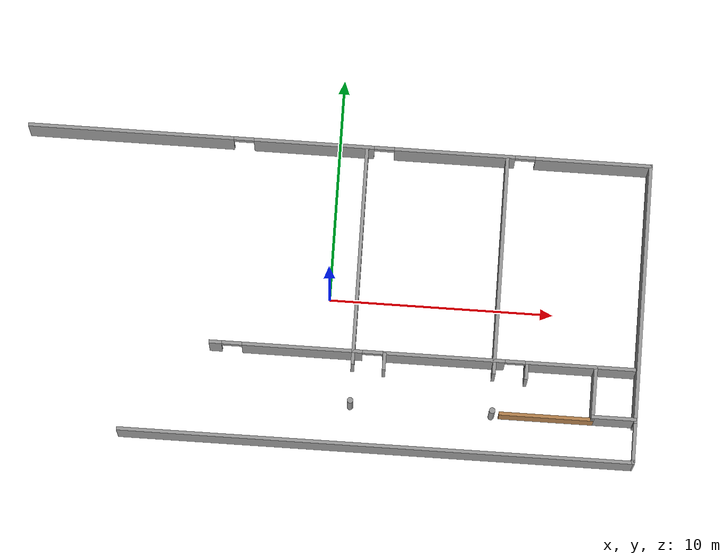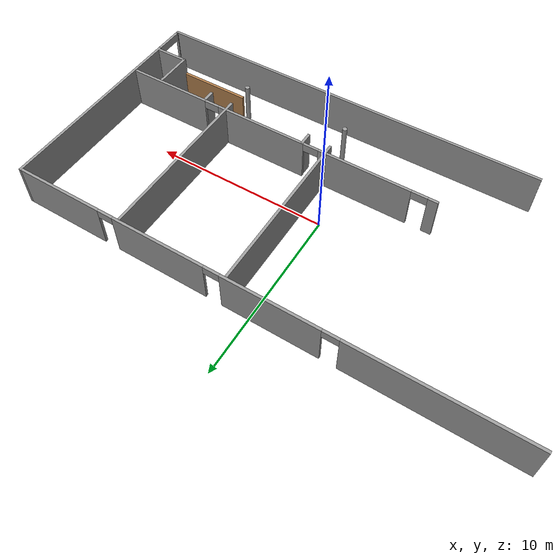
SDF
<sdf version="1.7">
 <model name="batimentH">
  <link name="Wall_0">
   <pose>0.006105 6.66605 0 0 -0 3.1407</pose>
   <visual name="Wall_0_Visual_0">
    <pose>-11.3504 0 1.25 0 -0 0</pose>
    <geometry><box><size>5.217 0.15 2.5</size></box></geometry>
    <material>
     <script><uri>file://media/materials/scripts/gazebo.material</uri><name>Gazebo/Grey</name></script>
     <ambient>1 1 1 1</ambient>
     <shader type="pixel"/>
    </material>
    <meta><layer>0</layer></meta>
   </visual>
   <visual name="Wall_0_Visual_1">
    <pose>-5.13636 0 1.25 0 -0 0</pose>
    <geometry><box><size>5.41105 0.15 2.5</size></box></geometry>
    <material>
     <script><uri>file://media/materials/scripts/gazebo.material</uri><name>Gazebo/Grey</name></script>
     <ambient>1 1 1 1</ambient>
     <shader type="pixel"/>
    </material>
    <meta><layer>0</layer></meta>
   </visual>
   <visual name="Wall_0_Visual_2">
    <pose>1.1607 0 1.25 0 -0 0</pose>
    <geometry><box><size>5.38305 0.15 2.5</size></box></geometry>
    <material>
     <script><uri>file://media/materials/scripts/gazebo.material</uri><name>Gazebo/Grey</name></script>
     <ambient>1 1 1 1</ambient>
     <shader type="pixel"/>
    </material>
    <meta><layer>0</layer></meta>
   </visual>
   <visual name="Wall_0_Visual_3">
    <pose>9.35555 0 1.25 0 -0 0</pose>
    <geometry><box><size>9.20665 0.15 2.5</size></box></geometry>
    <material>
     <script><uri>file://media/materials/scripts/gazebo.material</uri><name>Gazebo/Grey</name></script>
     <ambient>1 1 1 1</ambient>
     <shader type="pixel"/>
    </material>
    <meta><layer>0</layer></meta>
   </visual>
   <visual name="Wall_0_Visual_4">
    <pose>-8.29188 0 2.25 0 -0 0</pose>
    <geometry><box><size>0.9 0.15 0.5</size></box></geometry>
    <material>
     <script><uri>file://media/materials/scripts/gazebo.material</uri><name>Gazebo/Grey</name></script>
     <ambient>1 1 1 1</ambient>
     <shader type="pixel"/>
    </material>
    <meta><layer>0</layer></meta>
   </visual>
   <visual name="Wall_0_Visual_5">
    <pose>-1.98083 0 2.25 0 -0 0</pose>
    <geometry><box><size>0.9 0.15 0.5</size></box></geometry>
    <material>
     <script><uri>file://media/materials/scripts/gazebo.material</uri><name>Gazebo/Grey</name></script>
     <ambient>1 1 1 1</ambient>
     <shader type="pixel"/>
    </material>
    <meta><layer>0</layer></meta>
   </visual>
   <visual name="Wall_0_Visual_6">
    <pose>4.30223 0 2.25 0 -0 0</pose>
    <geometry><box><size>0.9 0.15 0.5</size></box></geometry>
    <material>
     <script><uri>file://media/materials/scripts/gazebo.material</uri><name>Gazebo/Grey</name></script>
     <ambient>1 1 1 1</ambient>
     <shader type="pixel"/>
    </material>
    <meta><layer>0</layer></meta>
   </visual>
   <collision name="Wall_0_Collision_0">
    <pose>-11.3504 0 1.25 0 -0 0</pose>
    <geometry><box><size>5.217 0.15 2.5</size></box></geometry>
    <surface>
     <friction>
      <ode><mu>1</mu><mu2>1</mu2><fdir1>0 0 0</fdir1><slip1>0</slip1><slip2>0</slip2></ode>
      <torsional>
       <coefficient>1</coefficient>
       <patch_radius>0</patch_radius>
       <surface_radius>0</surface_radius>
       <use_patch_radius>1</use_patch_radius>
       <ode><slip>0</slip></ode>
      </torsional>
     </friction>
     <bounce><restitution_coefficient>0</restitution_coefficient><threshold>1e+06</threshold></bounce>
     <contact>
      <collide_without_contact>0</collide_without_contact>
      <collide_without_contact_bitmask>1</collide_without_contact_bitmask>
      <collide_bitmask>1</collide_bitmask>
      <ode>
       <soft_cfm>0</soft_cfm>
       <soft_erp>0.2</soft_erp>
       <kp>1e+13</kp>
       <kd>1</kd>
       <max_vel>0.01</max_vel>
       <min_depth>0</min_depth>
      </ode>
      <bullet>
       <split_impulse>1</split_impulse>
       <split_impulse_penetration_threshold>-0.01</split_impulse_penetration_threshold>
       <soft_cfm>0</soft_cfm>
       <soft_erp>0.2</soft_erp>
       <kp>1e+13</kp>
       <kd>1</kd>
      </bullet>
     </contact>
    </surface>
   </collision>
   <collision name="Wall_0_Collision_1">
    <pose>-5.13636 0 1.25 0 -0 0</pose>
    <geometry><box><size>5.41105 0.15 2.5</size></box></geometry>
    <surface>
     <friction>
      <ode><mu>1</mu><mu2>1</mu2><fdir1>0 0 0</fdir1><slip1>0</slip1><slip2>0</slip2></ode>
      <torsional>
       <coefficient>1</coefficient>
       <patch_radius>0</patch_radius>
       <surface_radius>0</surface_radius>
       <use_patch_radius>1</use_patch_radius>
       <ode><slip>0</slip></ode>
      </torsional>
     </friction>
     <bounce><restitution_coefficient>0</restitution_coefficient><threshold>1e+06</threshold></bounce>
     <contact>
      <collide_without_contact>0</collide_without_contact>
      <collide_without_contact_bitmask>1</collide_without_contact_bitmask>
      <collide_bitmask>1</collide_bitmask>
      <ode>
       <soft_cfm>0</soft_cfm>
       <soft_erp>0.2</soft_erp>
       <kp>1e+13</kp>
       <kd>1</kd>
       <max_vel>0.01</max_vel>
       <min_depth>0</min_depth>
      </ode>
      <bullet>
       <split_impulse>1</split_impulse>
       <split_impulse_penetration_threshold>-0.01</split_impulse_penetration_threshold>
       <soft_cfm>0</soft_cfm>
       <soft_erp>0.2</soft_erp>
       <kp>1e+13</kp>
       <kd>1</kd>
      </bullet>
     </contact>
    </surface>
   </collision>
   <collision name="Wall_0_Collision_2">
    <pose>1.1607 0 1.25 0 -0 0</pose>
    <geometry><box><size>5.38305 0.15 2.5</size></box></geometry>
    <surface>
     <friction>
      <ode><mu>1</mu><mu2>1</mu2><fdir1>0 0 0</fdir1><slip1>0</slip1><slip2>0</slip2></ode>
      <torsional>
       <coefficient>1</coefficient>
       <patch_radius>0</patch_radius>
       <surface_radius>0</surface_radius>
       <use_patch_radius>1</use_patch_radius>
       <ode><slip>0</slip></ode>
      </torsional>
     </friction>
     <bounce><restitution_coefficient>0</restitution_coefficient><threshold>1e+06</threshold></bounce>
     <contact>
      <collide_without_contact>0</collide_without_contact>
      <collide_without_contact_bitmask>1</collide_without_contact_bitmask>
      <collide_bitmask>1</collide_bitmask>
      <ode>
       <soft_cfm>0</soft_cfm>
       <soft_erp>0.2</soft_erp>
       <kp>1e+13</kp>
       <kd>1</kd>
       <max_vel>0.01</max_vel>
       <min_depth>0</min_depth>
      </ode>
      <bullet>
       <split_impulse>1</split_impulse>
       <split_impulse_penetration_threshold>-0.01</split_impulse_penetration_threshold>
       <soft_cfm>0</soft_cfm>
       <soft_erp>0.2</soft_erp>
       <kp>1e+13</kp>
       <kd>1</kd>
      </bullet>
     </contact>
    </surface>
   </collision>
   <collision name="Wall_0_Collision_3">
    <pose>9.35555 0 1.25 0 -0 0</pose>
    <geometry><box><size>9.20665 0.15 2.5</size></box></geometry>
    <surface>
     <friction>
      <ode><mu>1</mu><mu2>1</mu2><fdir1>0 0 0</fdir1><slip1>0</slip1><slip2>0</slip2></ode>
      <torsional>
       <coefficient>1</coefficient>
       <patch_radius>0</patch_radius>
       <surface_radius>0</surface_radius>
       <use_patch_radius>1</use_patch_radius>
       <ode><slip>0</slip></ode>
      </torsional>
     </friction>
     <bounce><restitution_coefficient>0</restitution_coefficient><threshold>1e+06</threshold></bounce>
     <contact>
      <collide_without_contact>0</collide_without_contact>
      <collide_without_contact_bitmask>1</collide_without_contact_bitmask>
      <collide_bitmask>1</collide_bitmask>
      <ode>
       <soft_cfm>0</soft_cfm>
       <soft_erp>0.2</soft_erp>
       <kp>1e+13</kp>
       <kd>1</kd>
       <max_vel>0.01</max_vel>
       <min_depth>0</min_depth>
      </ode>
      <bullet>
       <split_impulse>1</split_impulse>
       <split_impulse_penetration_threshold>-0.01</split_impulse_penetration_threshold>
       <soft_cfm>0</soft_cfm>
       <soft_erp>0.2</soft_erp>
       <kp>1e+13</kp>
       <kd>1</kd>
      </bullet>
     </contact>
    </surface>
   </collision>
   <collision name="Wall_0_Collision_4">
    <pose>-8.29188 0 2.25 0 -0 0</pose>
    <geometry><box><size>0.9 0.15 0.5</size></box></geometry>
    <surface>
     <friction>
      <ode><mu>1</mu><mu2>1</mu2><fdir1>0 0 0</fdir1><slip1>0</slip1><slip2>0</slip2></ode>
      <torsional>
       <coefficient>1</coefficient>
       <patch_radius>0</patch_radius>
       <surface_radius>0</surface_radius>
       <use_patch_radius>1</use_patch_radius>
       <ode><slip>0</slip></ode>
      </torsional>
     </friction>
     <bounce><restitution_coefficient>0</restitution_coefficient><threshold>1e+06</threshold></bounce>
     <contact>
      <collide_without_contact>0</collide_without_contact>
      <collide_without_contact_bitmask>1</collide_without_contact_bitmask>
      <collide_bitmask>1</collide_bitmask>
      <ode>
       <soft_cfm>0</soft_cfm>
       <soft_erp>0.2</soft_erp>
       <kp>1e+13</kp>
       <kd>1</kd>
       <max_vel>0.01</max_vel>
       <min_depth>0</min_depth>
      </ode>
      <bullet>
       <split_impulse>1</split_impulse>
       <split_impulse_penetration_threshold>-0.01</split_impulse_penetration_threshold>
       <soft_cfm>0</soft_cfm>
       <soft_erp>0.2</soft_erp>
       <kp>1e+13</kp>
       <kd>1</kd>
      </bullet>
     </contact>
    </surface>
   </collision>
   <collision name="Wall_0_Collision_5">
    <pose>-1.98083 0 2.25 0 -0 0</pose>
    <geometry><box><size>0.9 0.15 0.5</size></box></geometry>
    <surface>
     <friction>
      <ode><mu>1</mu><mu2>1</mu2><fdir1>0 0 0</fdir1><slip1>0</slip1><slip2>0</slip2></ode>
      <torsional>
       <coefficient>1</coefficient>
       <patch_radius>0</patch_radius>
       <surface_radius>0</surface_radius>
       <use_patch_radius>1</use_patch_radius>
       <ode><slip>0</slip></ode>
      </torsional>
     </friction>
     <bounce><restitution_coefficient>0</restitution_coefficient><threshold>1e+06</threshold></bounce>
     <contact>
      <collide_without_contact>0</collide_without_contact>
      <collide_without_contact_bitmask>1</collide_without_contact_bitmask>
      <collide_bitmask>1</collide_bitmask>
      <ode>
       <soft_cfm>0</soft_cfm>
       <soft_erp>0.2</soft_erp>
       <kp>1e+13</kp>
       <kd>1</kd>
       <max_vel>0.01</max_vel>
       <min_depth>0</min_depth>
      </ode>
      <bullet>
       <split_impulse>1</split_impulse>
       <split_impulse_penetration_threshold>-0.01</split_impulse_penetration_threshold>
       <soft_cfm>0</soft_cfm>
       <soft_erp>0.2</soft_erp>
       <kp>1e+13</kp>
       <kd>1</kd>
      </bullet>
     </contact>
    </surface>
   </collision>
   <collision name="Wall_0_Collision_6">
    <pose>4.30223 0 2.25 0 -0 0</pose>
    <geometry><box><size>0.9 0.15 0.5</size></box></geometry>
    <surface>
     <friction>
      <ode><mu>1</mu><mu2>1</mu2><fdir1>0 0 0</fdir1><slip1>0</slip1><slip2>0</slip2></ode>
      <torsional>
       <coefficient>1</coefficient>
       <patch_radius>0</patch_radius>
       <surface_radius>0</surface_radius>
       <use_patch_radius>1</use_patch_radius>
       <ode><slip>0</slip></ode>
      </torsional>
     </friction>
     <bounce><restitution_coefficient>0</restitution_coefficient><threshold>1e+06</threshold></bounce>
     <contact>
      <collide_without_contact>0</collide_without_contact>
      <collide_without_contact_bitmask>1</collide_without_contact_bitmask>
      <collide_bitmask>1</collide_bitmask>
      <ode>
       <soft_cfm>0</soft_cfm>
       <soft_erp>0.2</soft_erp>
       <kp>1e+13</kp>
       <kd>1</kd>
       <max_vel>0.01</max_vel>
       <min_depth>0</min_depth>
      </ode>
      <bullet>
       <split_impulse>1</split_impulse>
       <split_impulse_penetration_threshold>-0.01</split_impulse_penetration_threshold>
       <soft_cfm>0</soft_cfm>
       <soft_erp>0.2</soft_erp>
       <kp>1e+13</kp>
       <kd>1</kd>
      </bullet>
     </contact>
    </surface>
   </collision>
  </link>
  <link name="Wall_35">
   <pose>1.21538 1.74857 0 0 0 -1.5708</pose>
   <visual name="Wall_35_Visual">
    <pose>0 0 1.25 0 -0 0</pose>
    <geometry><box><size>9.75 0.15 2.5</size></box></geometry>
    <material>
     <script><uri>file://media/materials/scripts/gazebo.material</uri><name>Gazebo/Grey</name></script>
     <ambient>1 1 1 1</ambient>
     <shader type="pixel"/>
    </material>
    <meta><layer>0</layer></meta>
   </visual>
   <collision name="Wall_35_Collision">
    <pose>0 0 1.25 0 -0 0</pose>
    <geometry><box><size>9.75 0.15 2.5</size></box></geometry>
    <surface>
     <friction>
      <ode><mu>1</mu><mu2>1</mu2><fdir1>0 0 0</fdir1><slip1>0</slip1><slip2>0</slip2></ode>
      <torsional>
       <coefficient>1</coefficient>
       <patch_radius>0</patch_radius>
       <surface_radius>0</surface_radius>
       <use_patch_radius>1</use_patch_radius>
       <ode><slip>0</slip></ode>
      </torsional>
     </friction>
     <bounce><restitution_coefficient>0</restitution_coefficient><threshold>1e+06</threshold></bounce>
     <contact>
      <collide_without_contact>0</collide_without_contact>
      <collide_without_contact_bitmask>1</collide_without_contact_bitmask>
      <collide_bitmask>1</collide_bitmask>
      <ode>
       <soft_cfm>0</soft_cfm>
       <soft_erp>0.2</soft_erp>
       <kp>1e+13</kp>
       <kd>1</kd>
       <max_vel>0.01</max_vel>
       <min_depth>0</min_depth>
      </ode>
      <bullet>
       <split_impulse>1</split_impulse>
       <split_impulse_penetration_threshold>-0.01</split_impulse_penetration_threshold>
       <soft_cfm>0</soft_cfm>
       <soft_erp>0.2</soft_erp>
       <kp>1e+13</kp>
       <kd>1</kd>
      </bullet>
     </contact>
    </surface>
   </collision>
  </link>
  <link name="Wall_37">
   <pose>7.50318 1.74251 0 0 0 -1.5708</pose>
   <visual name="Wall_37_Visual">
    <pose>0 0 1.25 0 -0 0</pose>
    <geometry><box><size>9.75 0.15 2.5</size></box></geometry>
    <material>
     <script><uri>file://media/materials/scripts/gazebo.material</uri><name>Gazebo/Grey</name></script>
     <ambient>1 1 1 1</ambient>
     <shader type="pixel"/>
    </material>
    <meta><layer>0</layer></meta>
   </visual>
   <collision name="Wall_37_Collision">
    <pose>0 0 1.25 0 -0 0</pose>
    <geometry><box><size>9.75 0.15 2.5</size></box></geometry>
    <surface>
     <friction>
      <ode><mu>1</mu><mu2>1</mu2><fdir1>0 0 0</fdir1><slip1>0</slip1><slip2>0</slip2></ode>
      <torsional>
       <coefficient>1</coefficient>
       <patch_radius>0</patch_radius>
       <surface_radius>0</surface_radius>
       <use_patch_radius>1</use_patch_radius>
       <ode><slip>0</slip></ode>
      </torsional>
     </friction>
     <bounce><restitution_coefficient>0</restitution_coefficient><threshold>1e+06</threshold></bounce>
     <contact>
      <collide_without_contact>0</collide_without_contact>
      <collide_without_contact_bitmask>1</collide_without_contact_bitmask>
      <collide_bitmask>1</collide_bitmask>
      <ode>
       <soft_cfm>0</soft_cfm>
       <soft_erp>0.2</soft_erp>
       <kp>1e+13</kp>
       <kd>1</kd>
       <max_vel>0.01</max_vel>
       <min_depth>0</min_depth>
      </ode>
      <bullet>
       <split_impulse>1</split_impulse>
       <split_impulse_penetration_threshold>-0.01</split_impulse_penetration_threshold>
       <soft_cfm>0</soft_cfm>
       <soft_erp>0.2</soft_erp>
       <kp>1e+13</kp>
       <kd>1</kd>
      </bullet>
     </contact>
    </surface>
   </collision>
  </link>
  <link name="Wall_39">
   <pose>4.29019 -2.53685 0 0 -0 0</pose>
   <visual name="Wall_39_Visual_0">
    <pose>-9.21688 0 1.25 0 -0 0</pose>
    <geometry><box><size>0.566242 0.15 2.5</size></box></geometry>
    <material>
     <script><uri>file://media/materials/scripts/gazebo.material</uri><name>Gazebo/Grey</name></script>
     <ambient>1 1 1 1</ambient>
     <shader type="pixel"/>
    </material>
    <meta><layer>0</layer></meta>
   </visual>
   <visual name="Wall_39_Visual_1">
    <pose>-5.3521 0 1.25 0 -0 0</pose>
    <geometry><box><size>5.36332 0.15 2.5</size></box></geometry>
    <material>
     <script><uri>file://media/materials/scripts/gazebo.material</uri><name>Gazebo/Grey</name></script>
     <ambient>1 1 1 1</ambient>
     <shader type="pixel"/>
    </material>
    <meta><layer>0</layer></meta>
   </visual>
   <visual name="Wall_39_Visual_2">
    <pose>0.951247 0 1.25 0 -0 0</pose>
    <geometry><box><size>5.44336 0.15 2.5</size></box></geometry>
    <material>
     <script><uri>file://media/materials/scripts/gazebo.material</uri><name>Gazebo/Grey</name></script>
     <ambient>1 1 1 1</ambient>
     <shader type="pixel"/>
    </material>
    <meta><layer>0</layer></meta>
   </visual>
   <visual name="Wall_39_Visual_3">
    <pose>7.03646 0 1.25 0 -0 0</pose>
    <geometry><box><size>4.92707 0.15 2.5</size></box></geometry>
    <material>
     <script><uri>file://media/materials/scripts/gazebo.material</uri><name>Gazebo/Grey</name></script>
     <ambient>1 1 1 1</ambient>
     <shader type="pixel"/>
    </material>
    <meta><layer>0</layer></meta>
   </visual>
   <visual name="Wall_39_Visual_4">
    <pose>-8.48376 0 2.25 0 -0 0</pose>
    <geometry><box><size>0.9 0.15 0.5</size></box></geometry>
    <material>
     <script><uri>file://media/materials/scripts/gazebo.material</uri><name>Gazebo/Grey</name></script>
     <ambient>1 1 1 1</ambient>
     <shader type="pixel"/>
    </material>
    <meta><layer>0</layer></meta>
   </visual>
   <visual name="Wall_39_Visual_5">
    <pose>-2.22043 0 2.25 0 -0 0</pose>
    <geometry><box><size>0.9 0.15 0.5</size></box></geometry>
    <material>
     <script><uri>file://media/materials/scripts/gazebo.material</uri><name>Gazebo/Grey</name></script>
     <ambient>1 1 1 1</ambient>
     <shader type="pixel"/>
    </material>
    <meta><layer>0</layer></meta>
   </visual>
   <visual name="Wall_39_Visual_6">
    <pose>4.12293 0 2.25 0 -0 0</pose>
    <geometry><box><size>0.9 0.15 0.5</size></box></geometry>
    <material>
     <script><uri>file://media/materials/scripts/gazebo.material</uri><name>Gazebo/Grey</name></script>
     <ambient>1 1 1 1</ambient>
     <shader type="pixel"/>
    </material>
    <meta><layer>0</layer></meta>
   </visual>
   <collision name="Wall_39_Collision_0">
    <pose>-9.21688 0 1.25 0 -0 0</pose>
    <geometry><box><size>0.566242 0.15 2.5</size></box></geometry>
    <surface>
     <friction>
      <ode><mu>1</mu><mu2>1</mu2><fdir1>0 0 0</fdir1><slip1>0</slip1><slip2>0</slip2></ode>
      <torsional>
       <coefficient>1</coefficient>
       <patch_radius>0</patch_radius>
       <surface_radius>0</surface_radius>
       <use_patch_radius>1</use_patch_radius>
       <ode><slip>0</slip></ode>
      </torsional>
     </friction>
     <bounce><restitution_coefficient>0</restitution_coefficient><threshold>1e+06</threshold></bounce>
     <contact>
      <collide_without_contact>0</collide_without_contact>
      <collide_without_contact_bitmask>1</collide_without_contact_bitmask>
      <collide_bitmask>1</collide_bitmask>
      <ode>
       <soft_cfm>0</soft_cfm>
       <soft_erp>0.2</soft_erp>
       <kp>1e+13</kp>
       <kd>1</kd>
       <max_vel>0.01</max_vel>
       <min_depth>0</min_depth>
      </ode>
      <bullet>
       <split_impulse>1</split_impulse>
       <split_impulse_penetration_threshold>-0.01</split_impulse_penetration_threshold>
       <soft_cfm>0</soft_cfm>
       <soft_erp>0.2</soft_erp>
       <kp>1e+13</kp>
       <kd>1</kd>
      </bullet>
     </contact>
    </surface>
   </collision>
   <collision name="Wall_39_Collision_2">
    <pose>0.951247 0 1.25 0 -0 0</pose>
    <geometry><box><size>5.44336 0.15 2.5</size></box></geometry>
    <surface>
     <friction>
      <ode><mu>1</mu><mu2>1</mu2><fdir1>0 0 0</fdir1><slip1>0</slip1><slip2>0</slip2></ode>
      <torsional>
       <coefficient>1</coefficient>
       <patch_radius>0</patch_radius>
       <surface_radius>0</surface_radius>
       <use_patch_radius>1</use_patch_radius>
       <ode><slip>0</slip></ode>
      </torsional>
     </friction>
     <bounce><restitution_coefficient>0</restitution_coefficient><threshold>1e+06</threshold></bounce>
     <contact>
      <collide_without_contact>0</collide_without_contact>
      <collide_without_contact_bitmask>1</collide_without_contact_bitmask>
      <collide_bitmask>1</collide_bitmask>
      <ode>
       <soft_cfm>0</soft_cfm>
       <soft_erp>0.2</soft_erp>
       <kp>1e+13</kp>
       <kd>1</kd>
       <max_vel>0.01</max_vel>
       <min_depth>0</min_depth>
      </ode>
      <bullet>
       <split_impulse>1</split_impulse>
       <split_impulse_penetration_threshold>-0.01</split_impulse_penetration_threshold>
       <soft_cfm>0</soft_cfm>
       <soft_erp>0.2</soft_erp>
       <kp>1e+13</kp>
       <kd>1</kd>
      </bullet>
     </contact>
    </surface>
   </collision>
   <collision name="Wall_39_Collision_1">
    <pose>-5.3521 0 1.25 0 -0 0</pose>
    <geometry><box><size>5.36332 0.15 2.5</size></box></geometry>
    <surface>
     <friction>
      <ode><mu>1</mu><mu2>1</mu2><fdir1>0 0 0</fdir1><slip1>0</slip1><slip2>0</slip2></ode>
      <torsional>
       <coefficient>1</coefficient>
       <patch_radius>0</patch_radius>
       <surface_radius>0</surface_radius>
       <use_patch_radius>1</use_patch_radius>
       <ode><slip>0</slip></ode>
      </torsional>
     </friction>
     <bounce><restitution_coefficient>0</restitution_coefficient><threshold>1e+06</threshold></bounce>
     <contact>
      <collide_without_contact>0</collide_without_contact>
      <collide_without_contact_bitmask>1</collide_without_contact_bitmask>
      <collide_bitmask>1</collide_bitmask>
      <ode>
       <soft_cfm>0</soft_cfm>
       <soft_erp>0.2</soft_erp>
       <kp>1e+13</kp>
       <kd>1</kd>
       <max_vel>0.01</max_vel>
       <min_depth>0</min_depth>
      </ode>
      <bullet>
       <split_impulse>1</split_impulse>
       <split_impulse_penetration_threshold>-0.01</split_impulse_penetration_threshold>
       <soft_cfm>0</soft_cfm>
       <soft_erp>0.2</soft_erp>
       <kp>1e+13</kp>
       <kd>1</kd>
      </bullet>
     </contact>
    </surface>
   </collision>
   <collision name="Wall_39_Collision_3">
    <pose>7.03646 0 1.25 0 -0 0</pose>
    <geometry><box><size>4.92707 0.15 2.5</size></box></geometry>
    <surface>
     <friction>
      <ode><mu>1</mu><mu2>1</mu2><fdir1>0 0 0</fdir1><slip1>0</slip1><slip2>0</slip2></ode>
      <torsional>
       <coefficient>1</coefficient>
       <patch_radius>0</patch_radius>
       <surface_radius>0</surface_radius>
       <use_patch_radius>1</use_patch_radius>
       <ode><slip>0</slip></ode>
      </torsional>
     </friction>
     <bounce><restitution_coefficient>0</restitution_coefficient><threshold>1e+06</threshold></bounce>
     <contact>
      <collide_without_contact>0</collide_without_contact>
      <collide_without_contact_bitmask>1</collide_without_contact_bitmask>
      <collide_bitmask>1</collide_bitmask>
      <ode>
       <soft_cfm>0</soft_cfm>
       <soft_erp>0.2</soft_erp>
       <kp>1e+13</kp>
       <kd>1</kd>
       <max_vel>0.01</max_vel>
       <min_depth>0</min_depth>
      </ode>
      <bullet>
       <split_impulse>1</split_impulse>
       <split_impulse_penetration_threshold>-0.01</split_impulse_penetration_threshold>
       <soft_cfm>0</soft_cfm>
       <soft_erp>0.2</soft_erp>
       <kp>1e+13</kp>
       <kd>1</kd>
      </bullet>
     </contact>
    </surface>
   </collision>
   <collision name="Wall_39_Collision_4">
    <pose>-8.48376 0 2.25 0 -0 0</pose>
    <geometry><box><size>0.9 0.15 0.5</size></box></geometry>
    <surface>
     <friction>
      <ode><mu>1</mu><mu2>1</mu2><fdir1>0 0 0</fdir1><slip1>0</slip1><slip2>0</slip2></ode>
      <torsional>
       <coefficient>1</coefficient>
       <patch_radius>0</patch_radius>
       <surface_radius>0</surface_radius>
       <use_patch_radius>1</use_patch_radius>
       <ode><slip>0</slip></ode>
      </torsional>
     </friction>
     <bounce><restitution_coefficient>0</restitution_coefficient><threshold>1e+06</threshold></bounce>
     <contact>
      <collide_without_contact>0</collide_without_contact>
      <collide_without_contact_bitmask>1</collide_without_contact_bitmask>
      <collide_bitmask>1</collide_bitmask>
      <ode>
       <soft_cfm>0</soft_cfm>
       <soft_erp>0.2</soft_erp>
       <kp>1e+13</kp>
       <kd>1</kd>
       <max_vel>0.01</max_vel>
       <min_depth>0</min_depth>
      </ode>
      <bullet>
       <split_impulse>1</split_impulse>
       <split_impulse_penetration_threshold>-0.01</split_impulse_penetration_threshold>
       <soft_cfm>0</soft_cfm>
       <soft_erp>0.2</soft_erp>
       <kp>1e+13</kp>
       <kd>1</kd>
      </bullet>
     </contact>
    </surface>
   </collision>
   <collision name="Wall_39_Collision_5">
    <pose>-2.22043 0 2.25 0 -0 0</pose>
    <geometry><box><size>0.9 0.15 0.5</size></box></geometry>
    <surface>
     <friction>
      <ode><mu>1</mu><mu2>1</mu2><fdir1>0 0 0</fdir1><slip1>0</slip1><slip2>0</slip2></ode>
      <torsional>
       <coefficient>1</coefficient>
       <patch_radius>0</patch_radius>
       <surface_radius>0</surface_radius>
       <use_patch_radius>1</use_patch_radius>
       <ode><slip>0</slip></ode>
      </torsional>
     </friction>
     <bounce><restitution_coefficient>0</restitution_coefficient><threshold>1e+06</threshold></bounce>
     <contact>
      <collide_without_contact>0</collide_without_contact>
      <collide_without_contact_bitmask>1</collide_without_contact_bitmask>
      <collide_bitmask>1</collide_bitmask>
      <ode>
       <soft_cfm>0</soft_cfm>
       <soft_erp>0.2</soft_erp>
       <kp>1e+13</kp>
       <kd>1</kd>
       <max_vel>0.01</max_vel>
       <min_depth>0</min_depth>
      </ode>
      <bullet>
       <split_impulse>1</split_impulse>
       <split_impulse_penetration_threshold>-0.01</split_impulse_penetration_threshold>
       <soft_cfm>0</soft_cfm>
       <soft_erp>0.2</soft_erp>
       <kp>1e+13</kp>
       <kd>1</kd>
      </bullet>
     </contact>
    </surface>
   </collision>
   <collision name="Wall_39_Collision_6">
    <pose>4.12293 0 2.25 0 -0 0</pose>
    <geometry><box><size>0.9 0.15 0.5</size></box></geometry>
    <surface>
     <friction>
      <ode><mu>1</mu><mu2>1</mu2><fdir1>0 0 0</fdir1><slip1>0</slip1><slip2>0</slip2></ode>
      <torsional>
       <coefficient>1</coefficient>
       <patch_radius>0</patch_radius>
       <surface_radius>0</surface_radius>
       <use_patch_radius>1</use_patch_radius>
       <ode><slip>0</slip></ode>
      </torsional>
     </friction>
     <bounce><restitution_coefficient>0</restitution_coefficient><threshold>1e+06</threshold></bounce>
     <contact>
      <collide_without_contact>0</collide_without_contact>
      <collide_without_contact_bitmask>1</collide_without_contact_bitmask>
      <collide_bitmask>1</collide_bitmask>
      <ode>
       <soft_cfm>0</soft_cfm>
       <soft_erp>0.2</soft_erp>
       <kp>1e+13</kp>
       <kd>1</kd>
       <max_vel>0.01</max_vel>
       <min_depth>0</min_depth>
      </ode>
      <bullet>
       <split_impulse>1</split_impulse>
       <split_impulse_penetration_threshold>-0.01</split_impulse_penetration_threshold>
       <soft_cfm>0</soft_cfm>
       <soft_erp>0.2</soft_erp>
       <kp>1e+13</kp>
       <kd>1</kd>
      </bullet>
     </contact>
    </surface>
   </collision>
  </link>
  <link name="Wall_42">
   <pose>2.61433 -2.89979 0 0 0 -1.5708</pose>
   <visual name="Wall_42_Visual">
    <pose>0 0 1.25 0 -0 0</pose>
    <geometry><box><size>0.75 0.15 2.5</size></box></geometry>
    <material>
     <script><uri>file://media/materials/scripts/gazebo.material</uri><name>Gazebo/Grey</name></script>
     <ambient>1 1 1 1</ambient>
     <shader type="pixel"/>
    </material>
    <meta><layer>0</layer></meta>
   </visual>
   <collision name="Wall_42_Collision">
    <pose>0 0 1.25 0 -0 0</pose>
    <geometry><box><size>0.75 0.15 2.5</size></box></geometry>
    <surface>
     <friction>
      <ode><mu>1</mu><mu2>1</mu2><fdir1>0 0 0</fdir1><slip1>0</slip1><slip2>0</slip2></ode>
      <torsional>
       <coefficient>1</coefficient>
       <patch_radius>0</patch_radius>
       <surface_radius>0</surface_radius>
       <use_patch_radius>1</use_patch_radius>
       <ode><slip>0</slip></ode>
      </torsional>
     </friction>
     <bounce><restitution_coefficient>0</restitution_coefficient><threshold>1e+06</threshold></bounce>
     <contact>
      <collide_without_contact>0</collide_without_contact>
      <collide_without_contact_bitmask>1</collide_without_contact_bitmask>
      <collide_bitmask>1</collide_bitmask>
      <ode>
       <soft_cfm>0</soft_cfm>
       <soft_erp>0.2</soft_erp>
       <kp>1e+13</kp>
       <kd>1</kd>
       <max_vel>0.01</max_vel>
       <min_depth>0</min_depth>
      </ode>
      <bullet>
       <split_impulse>1</split_impulse>
       <split_impulse_penetration_threshold>-0.01</split_impulse_penetration_threshold>
       <soft_cfm>0</soft_cfm>
       <soft_erp>0.2</soft_erp>
       <kp>1e+13</kp>
       <kd>1</kd>
      </bullet>
     </contact>
    </surface>
   </collision>
  </link>
  <link name="Wall_46">
   <pose>8.94655 -2.90008 0 0 0 -1.5708</pose>
   <visual name="Wall_46_Visual">
    <pose>0 0 1.25 0 -0 0</pose>
    <geometry><box><size>0.75 0.15 2.5</size></box></geometry>
    <material>
     <script><uri>file://media/materials/scripts/gazebo.material</uri><name>Gazebo/Grey</name></script>
     <ambient>1 1 1 1</ambient>
     <shader type="pixel"/>
    </material>
    <meta><layer>0</layer></meta>
   </visual>
   <collision name="Wall_46_Collision">
    <pose>0 0 1.25 0 -0 0</pose>
    <geometry><box><size>0.75 0.15 2.5</size></box></geometry>
    <surface>
     <friction>
      <ode><mu>1</mu><mu2>1</mu2><fdir1>0 0 0</fdir1><slip1>0</slip1><slip2>0</slip2></ode>
      <torsional>
       <coefficient>1</coefficient>
       <patch_radius>0</patch_radius>
       <surface_radius>0</surface_radius>
       <use_patch_radius>1</use_patch_radius>
       <ode><slip>0</slip></ode>
      </torsional>
     </friction>
     <bounce><restitution_coefficient>0</restitution_coefficient><threshold>1e+06</threshold></bounce>
     <contact>
      <collide_without_contact>0</collide_without_contact>
      <collide_without_contact_bitmask>1</collide_without_contact_bitmask>
      <collide_bitmask>1</collide_bitmask>
      <ode>
       <soft_cfm>0</soft_cfm>
       <soft_erp>0.2</soft_erp>
       <kp>1e+13</kp>
       <kd>1</kd>
       <max_vel>0.01</max_vel>
       <min_depth>0</min_depth>
      </ode>
      <bullet>
       <split_impulse>1</split_impulse>
       <split_impulse_penetration_threshold>-0.01</split_impulse_penetration_threshold>
       <soft_cfm>0</soft_cfm>
       <soft_erp>0.2</soft_erp>
       <kp>1e+13</kp>
       <kd>1</kd>
      </bullet>
     </contact>
    </surface>
   </collision>
  </link>
  <link name="Wall_52">
   <pose>2.47315 -6.68173 0 0 -0 0.000539</pose>
   <visual name="Wall_52_Visual">
    <pose>0 0 1.25 0 -0 0</pose>
    <geometry><box><size>22.9929 0.15 2.5</size></box></geometry>
    <material>
     <script><uri>file://media/materials/scripts/gazebo.material</uri><name>Gazebo/Grey</name></script>
     <ambient>1 1 1 1</ambient>
     <shader type="pixel"/>
    </material>
    <meta><layer>0</layer></meta>
   </visual>
   <collision name="Wall_52_Collision">
    <pose>0 0 1.25 0 -0 0</pose>
    <geometry><box><size>22.9929 0.15 2.5</size></box></geometry>
    <surface>
     <friction>
      <ode><mu>1</mu><mu2>1</mu2><fdir1>0 0 0</fdir1><slip1>0</slip1><slip2>0</slip2></ode>
      <torsional>
       <coefficient>1</coefficient>
       <patch_radius>0</patch_radius>
       <surface_radius>0</surface_radius>
       <use_patch_radius>1</use_patch_radius>
       <ode><slip>0</slip></ode>
      </torsional>
     </friction>
     <bounce><restitution_coefficient>0</restitution_coefficient><threshold>1e+06</threshold></bounce>
     <contact>
      <collide_without_contact>0</collide_without_contact>
      <collide_without_contact_bitmask>1</collide_without_contact_bitmask>
      <collide_bitmask>1</collide_bitmask>
      <ode>
       <soft_cfm>0</soft_cfm>
       <soft_erp>0.2</soft_erp>
       <kp>1e+13</kp>
       <kd>1</kd>
       <max_vel>0.01</max_vel>
       <min_depth>0</min_depth>
      </ode>
      <bullet>
       <split_impulse>1</split_impulse>
       <split_impulse_penetration_threshold>-0.01</split_impulse_penetration_threshold>
       <soft_cfm>0</soft_cfm>
       <soft_erp>0.2</soft_erp>
       <kp>1e+13</kp>
       <kd>1</kd>
      </bullet>
     </contact>
    </surface>
   </collision>
  </link>
  <link name="Wall_53">
   <pose>13.8985 -0.010927 0 0 -0 1.57021</pose>
   <visual name="Wall_53_Visual_0">
    <pose>-6.63903 0 1.25 0 -0 0</pose>
    <geometry><box><size>0.201223 0.15 2.5</size></box></geometry>
    <material>
     <script><uri>file://media/materials/scripts/gazebo.material</uri><name>Gazebo/Grey</name></script>
     <ambient>1 1 1 1</ambient>
     <shader type="pixel"/>
    </material>
    <meta><layer>0</layer></meta>
   </visual>
   <visual name="Wall_53_Visual_1">
    <pose>0.916637 0 1.25 0 -0 0</pose>
    <geometry><box><size>11.646 0.15 2.5</size></box></geometry>
    <material>
     <script><uri>file://media/materials/scripts/gazebo.material</uri><name>Gazebo/Grey</name></script>
     <ambient>1 1 1 1</ambient>
     <shader type="pixel"/>
    </material>
    <meta><layer>0</layer></meta>
   </visual>
   <visual name="Wall_53_Visual_2">
    <pose>-5.72239 0 2.25 0 -0 0</pose>
    <geometry><box><size>1.63205 0.15 0.5</size></box></geometry>
    <material>
     <script><uri>file://media/materials/scripts/gazebo.material</uri><name>Gazebo/Grey</name></script>
     <ambient>1 1 1 1</ambient>
     <shader type="pixel"/>
    </material>
    <meta><layer>0</layer></meta>
   </visual>
   <collision name="Wall_53_Collision_0">
    <pose>-6.63903 0 1.25 0 -0 0</pose>
    <geometry><box><size>0.201223 0.15 2.5</size></box></geometry>
    <surface>
     <friction>
      <ode><mu>1</mu><mu2>1</mu2><fdir1>0 0 0</fdir1><slip1>0</slip1><slip2>0</slip2></ode>
      <torsional>
       <coefficient>1</coefficient>
       <patch_radius>0</patch_radius>
       <surface_radius>0</surface_radius>
       <use_patch_radius>1</use_patch_radius>
       <ode><slip>0</slip></ode>
      </torsional>
     </friction>
     <bounce><restitution_coefficient>0</restitution_coefficient><threshold>1e+06</threshold></bounce>
     <contact>
      <collide_without_contact>0</collide_without_contact>
      <collide_without_contact_bitmask>1</collide_without_contact_bitmask>
      <collide_bitmask>1</collide_bitmask>
      <ode>
       <soft_cfm>0</soft_cfm>
       <soft_erp>0.2</soft_erp>
       <kp>1e+13</kp>
       <kd>1</kd>
       <max_vel>0.01</max_vel>
       <min_depth>0</min_depth>
      </ode>
      <bullet>
       <split_impulse>1</split_impulse>
       <split_impulse_penetration_threshold>-0.01</split_impulse_penetration_threshold>
       <soft_cfm>0</soft_cfm>
       <soft_erp>0.2</soft_erp>
       <kp>1e+13</kp>
       <kd>1</kd>
      </bullet>
     </contact>
    </surface>
   </collision>
   <collision name="Wall_53_Collision_1">
    <pose>0.916637 0 1.25 0 -0 0</pose>
    <geometry><box><size>11.646 0.15 2.5</size></box></geometry>
    <surface>
     <friction>
      <ode><mu>1</mu><mu2>1</mu2><fdir1>0 0 0</fdir1><slip1>0</slip1><slip2>0</slip2></ode>
      <torsional>
       <coefficient>1</coefficient>
       <patch_radius>0</patch_radius>
       <surface_radius>0</surface_radius>
       <use_patch_radius>1</use_patch_radius>
       <ode><slip>0</slip></ode>
      </torsional>
     </friction>
     <bounce><restitution_coefficient>0</restitution_coefficient><threshold>1e+06</threshold></bounce>
     <contact>
      <collide_without_contact>0</collide_without_contact>
      <collide_without_contact_bitmask>1</collide_without_contact_bitmask>
      <collide_bitmask>1</collide_bitmask>
      <ode>
       <soft_cfm>0</soft_cfm>
       <soft_erp>0.2</soft_erp>
       <kp>1e+13</kp>
       <kd>1</kd>
       <max_vel>0.01</max_vel>
       <min_depth>0</min_depth>
      </ode>
      <bullet>
       <split_impulse>1</split_impulse>
       <split_impulse_penetration_threshold>-0.01</split_impulse_penetration_threshold>
       <soft_cfm>0</soft_cfm>
       <soft_erp>0.2</soft_erp>
       <kp>1e+13</kp>
       <kd>1</kd>
      </bullet>
     </contact>
    </surface>
   </collision>
   <collision name="Wall_53_Collision_2">
    <pose>-5.72239 0 2.25 0 -0 0</pose>
    <geometry><box><size>1.63205 0.15 0.5</size></box></geometry>
    <surface>
     <friction>
      <ode><mu>1</mu><mu2>1</mu2><fdir1>0 0 0</fdir1><slip1>0</slip1><slip2>0</slip2></ode>
      <torsional>
       <coefficient>1</coefficient>
       <patch_radius>0</patch_radius>
       <surface_radius>0</surface_radius>
       <use_patch_radius>1</use_patch_radius>
       <ode><slip>0</slip></ode>
      </torsional>
     </friction>
     <bounce><restitution_coefficient>0</restitution_coefficient><threshold>1e+06</threshold></bounce>
     <contact>
      <collide_without_contact>0</collide_without_contact>
      <collide_without_contact_bitmask>1</collide_without_contact_bitmask>
      <collide_bitmask>1</collide_bitmask>
      <ode>
       <soft_cfm>0</soft_cfm>
       <soft_erp>0.2</soft_erp>
       <kp>1e+13</kp>
       <kd>1</kd>
       <max_vel>0.01</max_vel>
       <min_depth>0</min_depth>
      </ode>
      <bullet>
       <split_impulse>1</split_impulse>
       <split_impulse_penetration_threshold>-0.01</split_impulse_penetration_threshold>
       <soft_cfm>0</soft_cfm>
       <soft_erp>0.2</soft_erp>
       <kp>1e+13</kp>
       <kd>1</kd>
      </bullet>
     </contact>
    </surface>
   </collision>
  </link>
  <link name="Wall_55">
   <pose>9.9687 -4.75165 0 0 -0 3.14093</pose>
   <visual name="Wall_55_Visual">
    <pose>0 0 0.75 0 -0 0</pose>
    <geometry><box><size>4.21151 0.15 1.5</size></box></geometry>
    <material>
     <script><uri>file://media/materials/scripts/gazebo.material</uri><name>Gazebo/Wood</name></script>
     <ambient>1 1 1 1</ambient>
     <shader type="pixel"/>
    </material>
    <meta><layer>0</layer></meta>
   </visual>
   <collision name="Wall_55_Collision">
    <pose>0 0 0.75 0 -0 0</pose>
    <geometry><box><size>4.21151 0.15 1.5</size></box></geometry>
    <surface>
     <friction>
      <ode><mu>1</mu><mu2>1</mu2><fdir1>0 0 0</fdir1><slip1>0</slip1><slip2>0</slip2></ode>
      <torsional>
       <coefficient>1</coefficient>
       <patch_radius>0</patch_radius>
       <surface_radius>0</surface_radius>
       <use_patch_radius>1</use_patch_radius>
       <ode><slip>0</slip></ode>
      </torsional>
     </friction>
     <bounce><restitution_coefficient>0</restitution_coefficient><threshold>1e+06</threshold></bounce>
     <contact>
      <collide_without_contact>0</collide_without_contact>
      <collide_without_contact_bitmask>1</collide_without_contact_bitmask>
      <collide_bitmask>1</collide_bitmask>
      <ode>
       <soft_cfm>0</soft_cfm>
       <soft_erp>0.2</soft_erp>
       <kp>1e+13</kp>
       <kd>1</kd>
       <max_vel>0.01</max_vel>
       <min_depth>0</min_depth>
      </ode>
      <bullet>
       <split_impulse>1</split_impulse>
       <split_impulse_penetration_threshold>-0.01</split_impulse_penetration_threshold>
       <soft_cfm>0</soft_cfm>
       <soft_erp>0.2</soft_erp>
       <kp>1e+13</kp>
       <kd>1</kd>
      </bullet>
     </contact>
    </surface>
   </collision>
  </link>
  <link name="Wall_57">
   <pose>12.0044 -3.65982 0 0 0 -1.57287</pose>
   <visual name="Wall_57_Visual">
    <pose>0 0 1.25 0 -0 0</pose>
    <geometry><box><size>2.33135 0.15 2.5</size></box></geometry>
    <material>
     <script><uri>file://media/materials/scripts/gazebo.material</uri><name>Gazebo/Grey</name></script>
     <ambient>1 1 1 1</ambient>
     <shader type="pixel"/>
    </material>
    <meta><layer>0</layer></meta>
   </visual>
   <collision name="Wall_57_Collision">
    <pose>0 0 1.25 0 -0 0</pose>
    <geometry><box><size>2.33135 0.15 2.5</size></box></geometry>
    <surface>
     <friction>
      <ode><mu>1</mu><mu2>1</mu2><fdir1>0 0 0</fdir1><slip1>0</slip1><slip2>0</slip2></ode>
      <torsional>
       <coefficient>1</coefficient>
       <patch_radius>0</patch_radius>
       <surface_radius>0</surface_radius>
       <use_patch_radius>1</use_patch_radius>
       <ode><slip>0</slip></ode>
      </torsional>
     </friction>
     <bounce><restitution_coefficient>0</restitution_coefficient><threshold>1e+06</threshold></bounce>
     <contact>
      <collide_without_contact>0</collide_without_contact>
      <collide_without_contact_bitmask>1</collide_without_contact_bitmask>
      <collide_bitmask>1</collide_bitmask>
      <ode>
       <soft_cfm>0</soft_cfm>
       <soft_erp>0.2</soft_erp>
       <kp>1e+13</kp>
       <kd>1</kd>
       <max_vel>0.01</max_vel>
       <min_depth>0</min_depth>
      </ode>
      <bullet>
       <split_impulse>1</split_impulse>
       <split_impulse_penetration_threshold>-0.01</split_impulse_penetration_threshold>
       <soft_cfm>0</soft_cfm>
       <soft_erp>0.2</soft_erp>
       <kp>1e+13</kp>
       <kd>1</kd>
      </bullet>
     </contact>
    </surface>
   </collision>
  </link>
  <link name="Wall_59">
   <pose>12.9316 -4.75048 0 0 -0 0</pose>
   <visual name="Wall_59_Visual">
    <pose>0 0 1.25 0 -0 0</pose>
    <geometry><box><size>2 0.15 2.5</size></box></geometry>
    <material>
     <script><uri>file://media/materials/scripts/gazebo.material</uri><name>Gazebo/Grey</name></script>
     <ambient>1 1 1 1</ambient>
     <shader type="pixel"/>
    </material>
    <meta><layer>0</layer></meta>
   </visual>
   <collision name="Wall_59_Collision">
    <pose>0 0 1.25 0 -0 0</pose>
    <geometry><box><size>2 0.15 2.5</size></box></geometry>
    <surface>
     <friction>
      <ode><mu>1</mu><mu2>1</mu2><fdir1>0 0 0</fdir1><slip1>0</slip1><slip2>0</slip2></ode>
      <torsional>
       <coefficient>1</coefficient>
       <patch_radius>0</patch_radius>
       <surface_radius>0</surface_radius>
       <use_patch_radius>1</use_patch_radius>
       <ode><slip>0</slip></ode>
      </torsional>
     </friction>
     <bounce><restitution_coefficient>0</restitution_coefficient><threshold>1e+06</threshold></bounce>
     <contact>
      <collide_without_contact>0</collide_without_contact>
      <collide_without_contact_bitmask>1</collide_without_contact_bitmask>
      <collide_bitmask>1</collide_bitmask>
      <ode>
       <soft_cfm>0</soft_cfm>
       <soft_erp>0.2</soft_erp>
       <kp>1e+13</kp>
       <kd>1</kd>
       <max_vel>0.01</max_vel>
       <min_depth>0</min_depth>
      </ode>
      <bullet>
       <split_impulse>1</split_impulse>
       <split_impulse_penetration_threshold>-0.01</split_impulse_penetration_threshold>
       <soft_cfm>0</soft_cfm>
       <soft_erp>0.2</soft_erp>
       <kp>1e+13</kp>
       <kd>1</kd>
      </bullet>
     </contact>
    </surface>
   </collision>
  </link>
  <link name="link_0">
   <inertial>
    <mass>0.167804</mass>
    <inertia>
     <ixx>0.0790991</ixx>
     <ixy>0</ixy>
     <ixz>0</ixz>
     <iyy>0.0790991</iyy>
     <iyz>0</iyz>
     <izz>0.00148692</izz>
    </inertia>
   </inertial>
   <pose>7.53624 -4.7633 1.22558 0 -0 0</pose>
   <visual name="visual">
    <geometry><cylinder><radius>0.133124</radius><length>2.36714</length></cylinder></geometry>
    <material>
     <lighting>1</lighting>
     <script><uri>file://media/materials/scripts/gazebo.material</uri><name>Gazebo/Grey</name></script>
     <shader type="pixel"/>
    </material>
   </visual>
   <collision name="collision">
    <geometry><cylinder><radius>0.133124</radius><length>2.36714</length></cylinder></geometry>
    <surface>
     <friction>
      <ode><mu>1</mu><mu2>1</mu2><fdir1>0 0 0</fdir1><slip1>0</slip1><slip2>0</slip2></ode>
      <torsional>
       <coefficient>1</coefficient>
       <patch_radius>0</patch_radius>
       <surface_radius>0</surface_radius>
       <use_patch_radius>1</use_patch_radius>
       <ode><slip>0</slip></ode>
      </torsional>
     </friction>
     <bounce><restitution_coefficient>0</restitution_coefficient><threshold>1e+06</threshold></bounce>
     <contact>
      <collide_without_contact>0</collide_without_contact>
      <collide_without_contact_bitmask>1</collide_without_contact_bitmask>
      <collide_bitmask>1</collide_bitmask>
      <ode>
       <soft_cfm>0</soft_cfm>
       <soft_erp>0.2</soft_erp>
       <kp>1e+13</kp>
       <kd>1</kd>
       <max_vel>0.01</max_vel>
       <min_depth>0</min_depth>
      </ode>
      <bullet>
       <split_impulse>1</split_impulse>
       <split_impulse_penetration_threshold>-0.01</split_impulse_penetration_threshold>
       <soft_cfm>0</soft_cfm>
       <soft_erp>0.2</soft_erp>
       <kp>1e+13</kp>
       <kd>1</kd>
      </bullet>
     </contact>
    </surface>
   </collision>
  </link>
  <link name="link_0_clone">
   <inertial>
    <mass>0.167804</mass>
    <inertia>
     <ixx>0.0790991</ixx>
     <ixy>0</ixy>
     <ixz>0</ixz>
     <iyy>0.0790991</iyy>
     <iyz>0</iyz>
     <izz>0.00148692</izz>
    </inertia>
   </inertial>
   <pose>1.22562 -4.73597 1.22558 0 -0 0</pose>
   <visual name="visual">
    <geometry><cylinder><radius>0.133124</radius><length>2.36714</length></cylinder></geometry>
    <material>
     <lighting>1</lighting>
     <script><uri>file://media/materials/scripts/gazebo.material</uri><name>Gazebo/Grey</name></script>
     <shader type="pixel"/>
    </material>
   </visual>
   <collision name="collision">
    <geometry><cylinder><radius>0.133124</radius><length>2.36714</length></cylinder></geometry>
    <surface>
     <friction>
      <ode><mu>1</mu><mu2>1</mu2><fdir1>0 0 0</fdir1><slip1>0</slip1><slip2>0</slip2></ode>
      <torsional>
       <coefficient>1</coefficient>
       <patch_radius>0</patch_radius>
       <surface_radius>0</surface_radius>
       <use_patch_radius>1</use_patch_radius>
       <ode><slip>0</slip></ode>
      </torsional>
     </friction>
     <bounce><restitution_coefficient>0</restitution_coefficient><threshold>1e+06</threshold></bounce>
     <contact>
      <collide_without_contact>0</collide_without_contact>
      <collide_without_contact_bitmask>1</collide_without_contact_bitmask>
      <collide_bitmask>1</collide_bitmask>
      <ode>
       <soft_cfm>0</soft_cfm>
       <soft_erp>0.2</soft_erp>
       <kp>1e+13</kp>
       <kd>1</kd>
       <max_vel>0.01</max_vel>
       <min_depth>0</min_depth>
      </ode>
      <bullet>
       <split_impulse>1</split_impulse>
       <split_impulse_penetration_threshold>-0.01</split_impulse_penetration_threshold>
       <soft_cfm>0</soft_cfm>
       <soft_erp>0.2</soft_erp>
       <kp>1e+13</kp>
       <kd>1</kd>
      </bullet>
     </contact>
    </surface>
   </collision>
  </link>
  <static>1</static>
 </model>
</sdf>
